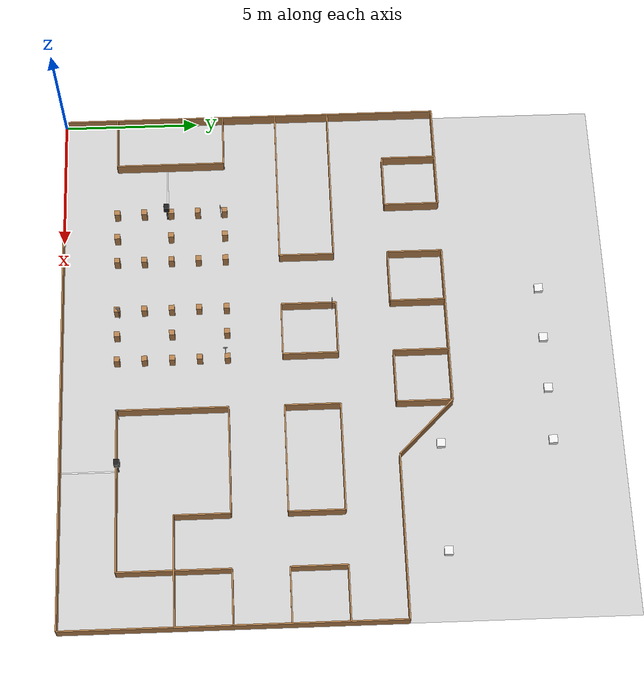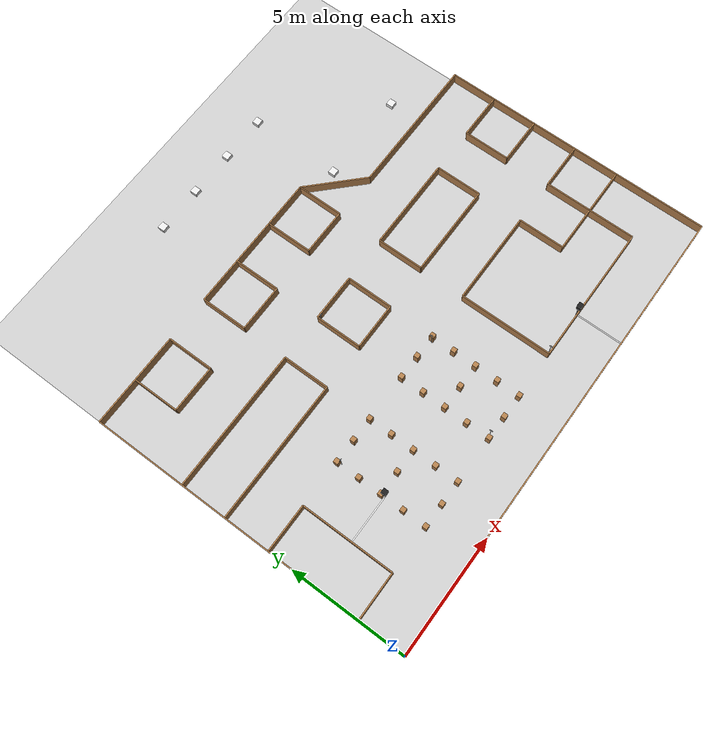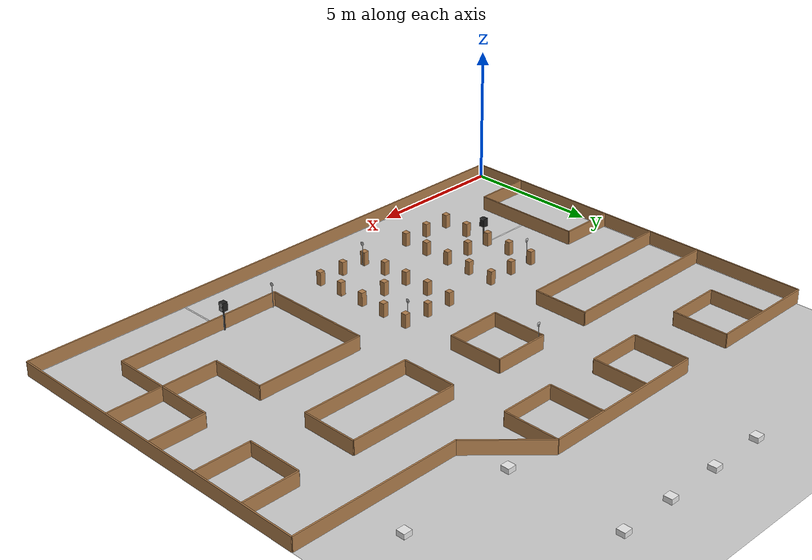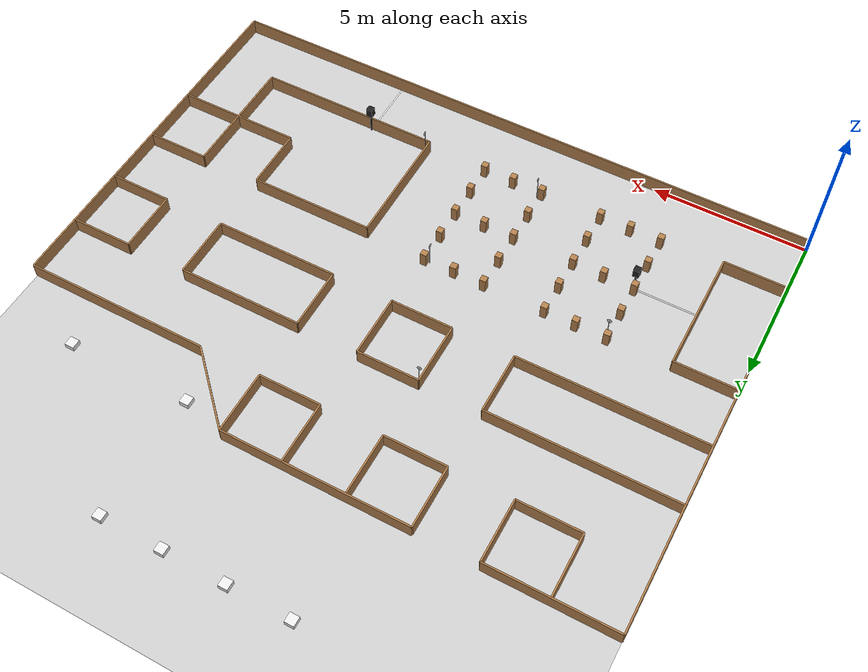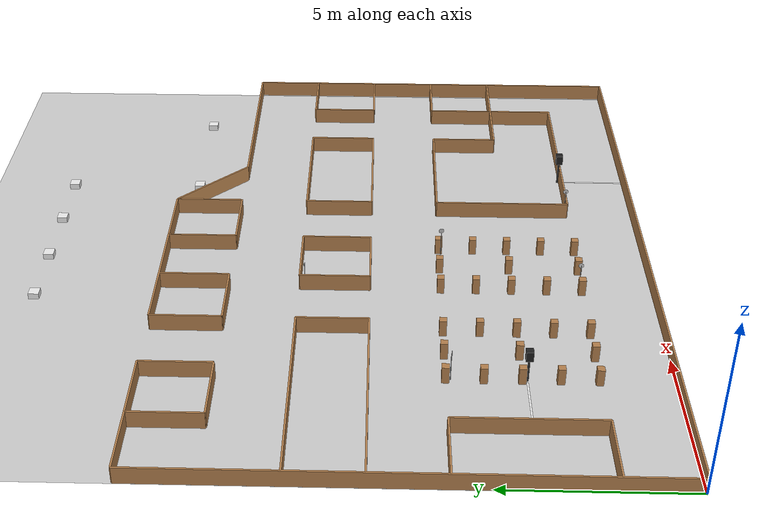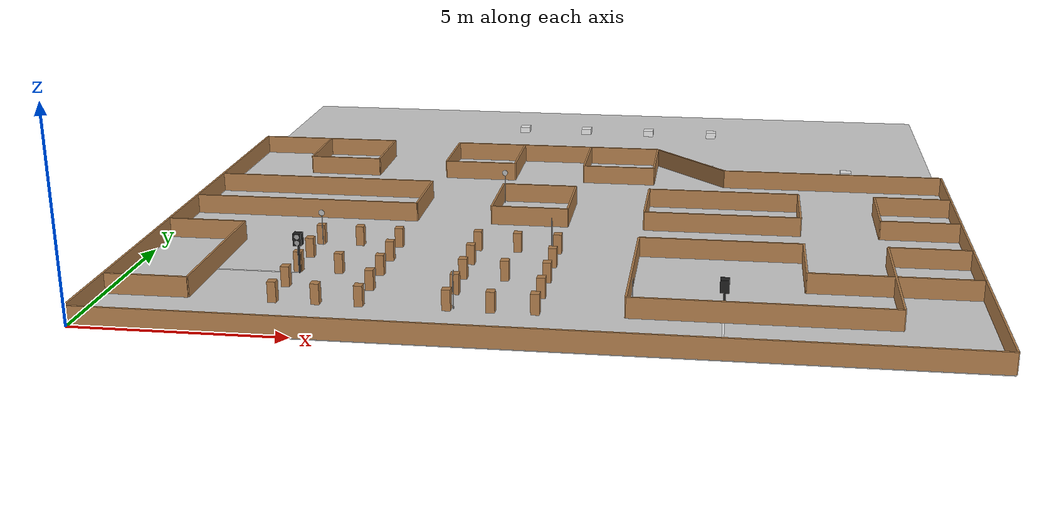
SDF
<sdf version="1.6">
 <world name="default">
  <include><uri>model://cube</uri><name>cube_5</name><pose>13.5 17.5 0 0 0 4.71238898038469</pose></include>
  <include><uri>model://cube</uri><name>cube_4</name><pose>11.5 17.5 0 0 0 4.71238898038469</pose></include>
  <include><uri>model://cube</uri><name>cube_3</name><pose>9.5 17.5 0 0 0 4.71238898038469</pose></include>
  <include><uri>model://cube</uri><name>cube_2</name><pose>7.5 17.5 0 0 0 4.71238898038469</pose></include>
  <include><uri>model://cube</uri><name>cube_1</name><pose>17.5 13.5 0 0 0 4.71238898038469</pose></include>
  <include><uri>model://cube</uri><name>cube_0</name><pose>13.5 13.5 0 0 0 4.71238898038469</pose></include>
  <model name="box_72">
   <pose>10.0 2.0 0.25 0 0 0</pose>
   <link name="link">
    <inertial>
     <mass>1</mass>
     <inertia><ixx>0</ixx><ixy>0</ixy><ixz>0</ixz><iyy>0</iyy><iyz>0</iyz><izz>0</izz></inertia>
    </inertial>
    <collision name="collision"><geometry><box><size>0.2 0.2 0.5</size></box></geometry></collision>
    <visual name="visual">
     <geometry><box><size>0.2 0.2 0.5</size></box></geometry>
     <material>
      <script><name>Gazebo/WoodFloor</name><uri>file://media/materials/scripts/gazebo.material</uri></script>
     </material>
    </visual>
   </link>
   <static>1</static>
  </model>
  <model name="box_71">
   <pose>9.0 2.0 0.25 0 0 0</pose>
   <link name="link">
    <inertial>
     <mass>1</mass>
     <inertia><ixx>0</ixx><ixy>0</ixy><ixz>0</ixz><iyy>0</iyy><iyz>0</iyz><izz>0</izz></inertia>
    </inertial>
    <collision name="collision"><geometry><box><size>0.2 0.2 0.5</size></box></geometry></collision>
    <visual name="visual">
     <geometry><box><size>0.2 0.2 0.5</size></box></geometry>
     <material>
      <script><name>Gazebo/WoodFloor</name><uri>file://media/materials/scripts/gazebo.material</uri></script>
     </material>
    </visual>
   </link>
   <static>1</static>
  </model>
  <model name="box_70">
   <pose>8.0 2.0 0.25 0 0 0</pose>
   <link name="link">
    <inertial>
     <mass>1</mass>
     <inertia><ixx>0</ixx><ixy>0</ixy><ixz>0</ixz><iyy>0</iyy><iyz>0</iyz><izz>0</izz></inertia>
    </inertial>
    <collision name="collision"><geometry><box><size>0.2 0.2 0.5</size></box></geometry></collision>
    <visual name="visual">
     <geometry><box><size>0.2 0.2 0.5</size></box></geometry>
     <material>
      <script><name>Gazebo/WoodFloor</name><uri>file://media/materials/scripts/gazebo.material</uri></script>
     </material>
    </visual>
   </link>
   <static>1</static>
  </model>
  <model name="box_69">
   <pose>10.0 3.0 0.25 0 0 0</pose>
   <link name="link">
    <inertial>
     <mass>1</mass>
     <inertia><ixx>0</ixx><ixy>0</ixy><ixz>0</ixz><iyy>0</iyy><iyz>0</iyz><izz>0</izz></inertia>
    </inertial>
    <collision name="collision"><geometry><box><size>0.2 0.2 0.5</size></box></geometry></collision>
    <visual name="visual">
     <geometry><box><size>0.2 0.2 0.5</size></box></geometry>
     <material>
      <script><name>Gazebo/WoodFloor</name><uri>file://media/materials/scripts/gazebo.material</uri></script>
     </material>
    </visual>
   </link>
   <static>1</static>
  </model>
  <model name="box_68">
   <pose>8.0 3.0 0.25 0 0 0</pose>
   <link name="link">
    <inertial>
     <mass>1</mass>
     <inertia><ixx>0</ixx><ixy>0</ixy><ixz>0</ixz><iyy>0</iyy><iyz>0</iyz><izz>0</izz></inertia>
    </inertial>
    <collision name="collision"><geometry><box><size>0.2 0.2 0.5</size></box></geometry></collision>
    <visual name="visual">
     <geometry><box><size>0.2 0.2 0.5</size></box></geometry>
     <material>
      <script><name>Gazebo/WoodFloor</name><uri>file://media/materials/scripts/gazebo.material</uri></script>
     </material>
    </visual>
   </link>
   <static>1</static>
  </model>
  <model name="box_67">
   <pose>10.0 4.0 0.25 0 0 0</pose>
   <link name="link">
    <inertial>
     <mass>1</mass>
     <inertia><ixx>0</ixx><ixy>0</ixy><ixz>0</ixz><iyy>0</iyy><iyz>0</iyz><izz>0</izz></inertia>
    </inertial>
    <collision name="collision"><geometry><box><size>0.2 0.2 0.5</size></box></geometry></collision>
    <visual name="visual">
     <geometry><box><size>0.2 0.2 0.5</size></box></geometry>
     <material>
      <script><name>Gazebo/WoodFloor</name><uri>file://media/materials/scripts/gazebo.material</uri></script>
     </material>
    </visual>
   </link>
   <static>1</static>
  </model>
  <model name="box_66">
   <pose>9.0 4.0 0.25 0 0 0</pose>
   <link name="link">
    <inertial>
     <mass>1</mass>
     <inertia><ixx>0</ixx><ixy>0</ixy><ixz>0</ixz><iyy>0</iyy><iyz>0</iyz><izz>0</izz></inertia>
    </inertial>
    <collision name="collision"><geometry><box><size>0.2 0.2 0.5</size></box></geometry></collision>
    <visual name="visual">
     <geometry><box><size>0.2 0.2 0.5</size></box></geometry>
     <material>
      <script><name>Gazebo/WoodFloor</name><uri>file://media/materials/scripts/gazebo.material</uri></script>
     </material>
    </visual>
   </link>
   <static>1</static>
  </model>
  <model name="box_65">
   <pose>8.0 4.0 0.25 0 0 0</pose>
   <link name="link">
    <inertial>
     <mass>1</mass>
     <inertia><ixx>0</ixx><ixy>0</ixy><ixz>0</ixz><iyy>0</iyy><iyz>0</iyz><izz>0</izz></inertia>
    </inertial>
    <collision name="collision"><geometry><box><size>0.2 0.2 0.5</size></box></geometry></collision>
    <visual name="visual">
     <geometry><box><size>0.2 0.2 0.5</size></box></geometry>
     <material>
      <script><name>Gazebo/WoodFloor</name><uri>file://media/materials/scripts/gazebo.material</uri></script>
     </material>
    </visual>
   </link>
   <static>1</static>
  </model>
  <model name="box_64">
   <pose>10.0 4.0 0.25 0 0 0</pose>
   <link name="link">
    <inertial>
     <mass>1</mass>
     <inertia><ixx>0</ixx><ixy>0</ixy><ixz>0</ixz><iyy>0</iyy><iyz>0</iyz><izz>0</izz></inertia>
    </inertial>
    <collision name="collision"><geometry><box><size>0.2 0.2 0.5</size></box></geometry></collision>
    <visual name="visual">
     <geometry><box><size>0.2 0.2 0.5</size></box></geometry>
     <material>
      <script><name>Gazebo/WoodFloor</name><uri>file://media/materials/scripts/gazebo.material</uri></script>
     </material>
    </visual>
   </link>
   <static>1</static>
  </model>
  <model name="box_63">
   <pose>9.0 4.0 0.25 0 0 0</pose>
   <link name="link">
    <inertial>
     <mass>1</mass>
     <inertia><ixx>0</ixx><ixy>0</ixy><ixz>0</ixz><iyy>0</iyy><iyz>0</iyz><izz>0</izz></inertia>
    </inertial>
    <collision name="collision"><geometry><box><size>0.2 0.2 0.5</size></box></geometry></collision>
    <visual name="visual">
     <geometry><box><size>0.2 0.2 0.5</size></box></geometry>
     <material>
      <script><name>Gazebo/WoodFloor</name><uri>file://media/materials/scripts/gazebo.material</uri></script>
     </material>
    </visual>
   </link>
   <static>1</static>
  </model>
  <model name="box_62">
   <pose>8.0 4.0 0.25 0 0 0</pose>
   <link name="link">
    <inertial>
     <mass>1</mass>
     <inertia><ixx>0</ixx><ixy>0</ixy><ixz>0</ixz><iyy>0</iyy><iyz>0</iyz><izz>0</izz></inertia>
    </inertial>
    <collision name="collision"><geometry><box><size>0.2 0.2 0.5</size></box></geometry></collision>
    <visual name="visual">
     <geometry><box><size>0.2 0.2 0.5</size></box></geometry>
     <material>
      <script><name>Gazebo/WoodFloor</name><uri>file://media/materials/scripts/gazebo.material</uri></script>
     </material>
    </visual>
   </link>
   <static>1</static>
  </model>
  <model name="box_61">
   <pose>10.0 5.0 0.25 0 0 0</pose>
   <link name="link">
    <inertial>
     <mass>1</mass>
     <inertia><ixx>0</ixx><ixy>0</ixy><ixz>0</ixz><iyy>0</iyy><iyz>0</iyz><izz>0</izz></inertia>
    </inertial>
    <collision name="collision"><geometry><box><size>0.2 0.2 0.5</size></box></geometry></collision>
    <visual name="visual">
     <geometry><box><size>0.2 0.2 0.5</size></box></geometry>
     <material>
      <script><name>Gazebo/WoodFloor</name><uri>file://media/materials/scripts/gazebo.material</uri></script>
     </material>
    </visual>
   </link>
   <static>1</static>
  </model>
  <model name="box_60">
   <pose>8.0 5.0 0.25 0 0 0</pose>
   <link name="link">
    <inertial>
     <mass>1</mass>
     <inertia><ixx>0</ixx><ixy>0</ixy><ixz>0</ixz><iyy>0</iyy><iyz>0</iyz><izz>0</izz></inertia>
    </inertial>
    <collision name="collision"><geometry><box><size>0.2 0.2 0.5</size></box></geometry></collision>
    <visual name="visual">
     <geometry><box><size>0.2 0.2 0.5</size></box></geometry>
     <material>
      <script><name>Gazebo/WoodFloor</name><uri>file://media/materials/scripts/gazebo.material</uri></script>
     </material>
    </visual>
   </link>
   <static>1</static>
  </model>
  <model name="box_59">
   <pose>10.0 6.0 0.25 0 0 0</pose>
   <link name="link">
    <inertial>
     <mass>1</mass>
     <inertia><ixx>0</ixx><ixy>0</ixy><ixz>0</ixz><iyy>0</iyy><iyz>0</iyz><izz>0</izz></inertia>
    </inertial>
    <collision name="collision"><geometry><box><size>0.2 0.2 0.5</size></box></geometry></collision>
    <visual name="visual">
     <geometry><box><size>0.2 0.2 0.5</size></box></geometry>
     <material>
      <script><name>Gazebo/WoodFloor</name><uri>file://media/materials/scripts/gazebo.material</uri></script>
     </material>
    </visual>
   </link>
   <static>1</static>
  </model>
  <model name="box_58">
   <pose>9.0 6.0 0.25 0 0 0</pose>
   <link name="link">
    <inertial>
     <mass>1</mass>
     <inertia><ixx>0</ixx><ixy>0</ixy><ixz>0</ixz><iyy>0</iyy><iyz>0</iyz><izz>0</izz></inertia>
    </inertial>
    <collision name="collision"><geometry><box><size>0.2 0.2 0.5</size></box></geometry></collision>
    <visual name="visual">
     <geometry><box><size>0.2 0.2 0.5</size></box></geometry>
     <material>
      <script><name>Gazebo/WoodFloor</name><uri>file://media/materials/scripts/gazebo.material</uri></script>
     </material>
    </visual>
   </link>
   <static>1</static>
  </model>
  <model name="box_57">
   <pose>8.0 6.0 0.25 0 0 0</pose>
   <link name="link">
    <inertial>
     <mass>1</mass>
     <inertia><ixx>0</ixx><ixy>0</ixy><ixz>0</ixz><iyy>0</iyy><iyz>0</iyz><izz>0</izz></inertia>
    </inertial>
    <collision name="collision"><geometry><box><size>0.2 0.2 0.5</size></box></geometry></collision>
    <visual name="visual">
     <geometry><box><size>0.2 0.2 0.5</size></box></geometry>
     <material>
      <script><name>Gazebo/WoodFloor</name><uri>file://media/materials/scripts/gazebo.material</uri></script>
     </material>
    </visual>
   </link>
   <static>1</static>
  </model>
  <model name="box_56">
   <pose>6.0 2.0 0.25 0 0 0</pose>
   <link name="link">
    <inertial>
     <mass>1</mass>
     <inertia><ixx>0</ixx><ixy>0</ixy><ixz>0</ixz><iyy>0</iyy><iyz>0</iyz><izz>0</izz></inertia>
    </inertial>
    <collision name="collision"><geometry><box><size>0.2 0.2 0.5</size></box></geometry></collision>
    <visual name="visual">
     <geometry><box><size>0.2 0.2 0.5</size></box></geometry>
     <material>
      <script><name>Gazebo/WoodFloor</name><uri>file://media/materials/scripts/gazebo.material</uri></script>
     </material>
    </visual>
   </link>
   <static>1</static>
  </model>
  <model name="box_55">
   <pose>5.0 2.0 0.25 0 0 0</pose>
   <link name="link">
    <inertial>
     <mass>1</mass>
     <inertia><ixx>0</ixx><ixy>0</ixy><ixz>0</ixz><iyy>0</iyy><iyz>0</iyz><izz>0</izz></inertia>
    </inertial>
    <collision name="collision"><geometry><box><size>0.2 0.2 0.5</size></box></geometry></collision>
    <visual name="visual">
     <geometry><box><size>0.2 0.2 0.5</size></box></geometry>
     <material>
      <script><name>Gazebo/WoodFloor</name><uri>file://media/materials/scripts/gazebo.material</uri></script>
     </material>
    </visual>
   </link>
   <static>1</static>
  </model>
  <model name="box_54">
   <pose>4.0 2.0 0.25 0 0 0</pose>
   <link name="link">
    <inertial>
     <mass>1</mass>
     <inertia><ixx>0</ixx><ixy>0</ixy><ixz>0</ixz><iyy>0</iyy><iyz>0</iyz><izz>0</izz></inertia>
    </inertial>
    <collision name="collision"><geometry><box><size>0.2 0.2 0.5</size></box></geometry></collision>
    <visual name="visual">
     <geometry><box><size>0.2 0.2 0.5</size></box></geometry>
     <material>
      <script><name>Gazebo/WoodFloor</name><uri>file://media/materials/scripts/gazebo.material</uri></script>
     </material>
    </visual>
   </link>
   <static>1</static>
  </model>
  <model name="box_53">
   <pose>6.0 3.0 0.25 0 0 0</pose>
   <link name="link">
    <inertial>
     <mass>1</mass>
     <inertia><ixx>0</ixx><ixy>0</ixy><ixz>0</ixz><iyy>0</iyy><iyz>0</iyz><izz>0</izz></inertia>
    </inertial>
    <collision name="collision"><geometry><box><size>0.2 0.2 0.5</size></box></geometry></collision>
    <visual name="visual">
     <geometry><box><size>0.2 0.2 0.5</size></box></geometry>
     <material>
      <script><name>Gazebo/WoodFloor</name><uri>file://media/materials/scripts/gazebo.material</uri></script>
     </material>
    </visual>
   </link>
   <static>1</static>
  </model>
  <model name="box_52">
   <pose>4.0 3.0 0.25 0 0 0</pose>
   <link name="link">
    <inertial>
     <mass>1</mass>
     <inertia><ixx>0</ixx><ixy>0</ixy><ixz>0</ixz><iyy>0</iyy><iyz>0</iyz><izz>0</izz></inertia>
    </inertial>
    <collision name="collision"><geometry><box><size>0.2 0.2 0.5</size></box></geometry></collision>
    <visual name="visual">
     <geometry><box><size>0.2 0.2 0.5</size></box></geometry>
     <material>
      <script><name>Gazebo/WoodFloor</name><uri>file://media/materials/scripts/gazebo.material</uri></script>
     </material>
    </visual>
   </link>
   <static>1</static>
  </model>
  <model name="box_51">
   <pose>6.0 4.0 0.25 0 0 0</pose>
   <link name="link">
    <inertial>
     <mass>1</mass>
     <inertia><ixx>0</ixx><ixy>0</ixy><ixz>0</ixz><iyy>0</iyy><iyz>0</iyz><izz>0</izz></inertia>
    </inertial>
    <collision name="collision"><geometry><box><size>0.2 0.2 0.5</size></box></geometry></collision>
    <visual name="visual">
     <geometry><box><size>0.2 0.2 0.5</size></box></geometry>
     <material>
      <script><name>Gazebo/WoodFloor</name><uri>file://media/materials/scripts/gazebo.material</uri></script>
     </material>
    </visual>
   </link>
   <static>1</static>
  </model>
  <model name="box_50">
   <pose>5.0 4.0 0.25 0 0 0</pose>
   <link name="link">
    <inertial>
     <mass>1</mass>
     <inertia><ixx>0</ixx><ixy>0</ixy><ixz>0</ixz><iyy>0</iyy><iyz>0</iyz><izz>0</izz></inertia>
    </inertial>
    <collision name="collision"><geometry><box><size>0.2 0.2 0.5</size></box></geometry></collision>
    <visual name="visual">
     <geometry><box><size>0.2 0.2 0.5</size></box></geometry>
     <material>
      <script><name>Gazebo/WoodFloor</name><uri>file://media/materials/scripts/gazebo.material</uri></script>
     </material>
    </visual>
   </link>
   <static>1</static>
  </model>
  <model name="box_49">
   <pose>4.0 4.0 0.25 0 0 0</pose>
   <link name="link">
    <inertial>
     <mass>1</mass>
     <inertia><ixx>0</ixx><ixy>0</ixy><ixz>0</ixz><iyy>0</iyy><iyz>0</iyz><izz>0</izz></inertia>
    </inertial>
    <collision name="collision"><geometry><box><size>0.2 0.2 0.5</size></box></geometry></collision>
    <visual name="visual">
     <geometry><box><size>0.2 0.2 0.5</size></box></geometry>
     <material>
      <script><name>Gazebo/WoodFloor</name><uri>file://media/materials/scripts/gazebo.material</uri></script>
     </material>
    </visual>
   </link>
   <static>1</static>
  </model>
  <model name="box_48">
   <pose>6.0 4.0 0.25 0 0 0</pose>
   <link name="link">
    <inertial>
     <mass>1</mass>
     <inertia><ixx>0</ixx><ixy>0</ixy><ixz>0</ixz><iyy>0</iyy><iyz>0</iyz><izz>0</izz></inertia>
    </inertial>
    <collision name="collision"><geometry><box><size>0.2 0.2 0.5</size></box></geometry></collision>
    <visual name="visual">
     <geometry><box><size>0.2 0.2 0.5</size></box></geometry>
     <material>
      <script><name>Gazebo/WoodFloor</name><uri>file://media/materials/scripts/gazebo.material</uri></script>
     </material>
    </visual>
   </link>
   <static>1</static>
  </model>
  <model name="box_47">
   <pose>5.0 4.0 0.25 0 0 0</pose>
   <link name="link">
    <inertial>
     <mass>1</mass>
     <inertia><ixx>0</ixx><ixy>0</ixy><ixz>0</ixz><iyy>0</iyy><iyz>0</iyz><izz>0</izz></inertia>
    </inertial>
    <collision name="collision"><geometry><box><size>0.2 0.2 0.5</size></box></geometry></collision>
    <visual name="visual">
     <geometry><box><size>0.2 0.2 0.5</size></box></geometry>
     <material>
      <script><name>Gazebo/WoodFloor</name><uri>file://media/materials/scripts/gazebo.material</uri></script>
     </material>
    </visual>
   </link>
   <static>1</static>
  </model>
  <model name="box_46">
   <pose>4.0 4.0 0.25 0 0 0</pose>
   <link name="link">
    <inertial>
     <mass>1</mass>
     <inertia><ixx>0</ixx><ixy>0</ixy><ixz>0</ixz><iyy>0</iyy><iyz>0</iyz><izz>0</izz></inertia>
    </inertial>
    <collision name="collision"><geometry><box><size>0.2 0.2 0.5</size></box></geometry></collision>
    <visual name="visual">
     <geometry><box><size>0.2 0.2 0.5</size></box></geometry>
     <material>
      <script><name>Gazebo/WoodFloor</name><uri>file://media/materials/scripts/gazebo.material</uri></script>
     </material>
    </visual>
   </link>
   <static>1</static>
  </model>
  <model name="box_45">
   <pose>6.0 5.0 0.25 0 0 0</pose>
   <link name="link">
    <inertial>
     <mass>1</mass>
     <inertia><ixx>0</ixx><ixy>0</ixy><ixz>0</ixz><iyy>0</iyy><iyz>0</iyz><izz>0</izz></inertia>
    </inertial>
    <collision name="collision"><geometry><box><size>0.2 0.2 0.5</size></box></geometry></collision>
    <visual name="visual">
     <geometry><box><size>0.2 0.2 0.5</size></box></geometry>
     <material>
      <script><name>Gazebo/WoodFloor</name><uri>file://media/materials/scripts/gazebo.material</uri></script>
     </material>
    </visual>
   </link>
   <static>1</static>
  </model>
  <model name="box_44">
   <pose>4.0 5.0 0.25 0 0 0</pose>
   <link name="link">
    <inertial>
     <mass>1</mass>
     <inertia><ixx>0</ixx><ixy>0</ixy><ixz>0</ixz><iyy>0</iyy><iyz>0</iyz><izz>0</izz></inertia>
    </inertial>
    <collision name="collision"><geometry><box><size>0.2 0.2 0.5</size></box></geometry></collision>
    <visual name="visual">
     <geometry><box><size>0.2 0.2 0.5</size></box></geometry>
     <material>
      <script><name>Gazebo/WoodFloor</name><uri>file://media/materials/scripts/gazebo.material</uri></script>
     </material>
    </visual>
   </link>
   <static>1</static>
  </model>
  <model name="box_43">
   <pose>6.0 6.0 0.25 0 0 0</pose>
   <link name="link">
    <inertial>
     <mass>1</mass>
     <inertia><ixx>0</ixx><ixy>0</ixy><ixz>0</ixz><iyy>0</iyy><iyz>0</iyz><izz>0</izz></inertia>
    </inertial>
    <collision name="collision"><geometry><box><size>0.2 0.2 0.5</size></box></geometry></collision>
    <visual name="visual">
     <geometry><box><size>0.2 0.2 0.5</size></box></geometry>
     <material>
      <script><name>Gazebo/WoodFloor</name><uri>file://media/materials/scripts/gazebo.material</uri></script>
     </material>
    </visual>
   </link>
   <static>1</static>
  </model>
  <model name="box_42">
   <pose>5.0 6.0 0.25 0 0 0</pose>
   <link name="link">
    <inertial>
     <mass>1</mass>
     <inertia><ixx>0</ixx><ixy>0</ixy><ixz>0</ixz><iyy>0</iyy><iyz>0</iyz><izz>0</izz></inertia>
    </inertial>
    <collision name="collision"><geometry><box><size>0.2 0.2 0.5</size></box></geometry></collision>
    <visual name="visual">
     <geometry><box><size>0.2 0.2 0.5</size></box></geometry>
     <material>
      <script><name>Gazebo/WoodFloor</name><uri>file://media/materials/scripts/gazebo.material</uri></script>
     </material>
    </visual>
   </link>
   <static>1</static>
  </model>
  <model name="box_41">
   <pose>4.0 6.0 0.25 0 0 0</pose>
   <link name="link">
    <inertial>
     <mass>1</mass>
     <inertia><ixx>0</ixx><ixy>0</ixy><ixz>0</ixz><iyy>0</iyy><iyz>0</iyz><izz>0</izz></inertia>
    </inertial>
    <collision name="collision"><geometry><box><size>0.2 0.2 0.5</size></box></geometry></collision>
    <visual name="visual">
     <geometry><box><size>0.2 0.2 0.5</size></box></geometry>
     <material>
      <script><name>Gazebo/WoodFloor</name><uri>file://media/materials/scripts/gazebo.material</uri></script>
     </material>
    </visual>
   </link>
   <static>1</static>
  </model>
  <include>
   <uri>model://left-sign</uri>
   <name>sign_4</name>
   <pose>8.06 9.86 0 0 0 6.283185307179586</pose>
  </include>
  <include>
   <uri>model://brick-sign</uri>
   <name>sign_3</name>
   <pose>9.86 5.9399999999999995 0 0 0 4.71238898038469</pose>
  </include>
  <include>
   <uri>model://right-sign</uri>
   <name>sign_2</name>
   <pose>4.06 5.859999999999999 0 0 0 6.283185307179586</pose>
  </include>
  <include>
   <uri>model://forward-sign</uri>
   <name>sign_1</name>
   <pose>12.14 2.0600000000000005 0 0 0 1.5707963267948966</pose>
  </include>
  <include>
   <uri>model://forward-sign</uri>
   <name>sign_0</name>
   <pose>8.14 2.0600000000000005 0 0 0 1.5707963267948966</pose>
  </include>
  <model name="box_40">
   <pose>12.0 13.0 0.25 0 0 -1.5707963267948966</pose>
   <link name="link">
    <inertial>
     <mass>1</mass>
     <inertia><ixx>0</ixx><ixy>0</ixy><ixz>0</ixz><iyy>0</iyy><iyz>0</iyz><izz>0</izz></inertia>
    </inertial>
    <collision name="collision"><geometry><box><size>2.0 0.05 0.5</size></box></geometry></collision>
    <visual name="visual">
     <geometry><box><size>2.0 0.05 0.5</size></box></geometry>
     <material>
      <script><name>Gazebo/WoodFloor</name><uri>file://media/materials/scripts/gazebo.material</uri></script>
     </material>
    </visual>
   </link>
   <static>1</static>
  </model>
  <model name="box_39">
   <pose>11.0 12.0 0.25 0 0 -3.141592653589793</pose>
   <link name="link">
    <inertial>
     <mass>1</mass>
     <inertia><ixx>0</ixx><ixy>0</ixy><ixz>0</ixz><iyy>0</iyy><iyz>0</iyz><izz>0</izz></inertia>
    </inertial>
    <collision name="collision"><geometry><box><size>2.0 0.05 0.5</size></box></geometry></collision>
    <visual name="visual">
     <geometry><box><size>2.0 0.05 0.5</size></box></geometry>
     <material>
      <script><name>Gazebo/WoodFloor</name><uri>file://media/materials/scripts/gazebo.material</uri></script>
     </material>
    </visual>
   </link>
   <static>1</static>
  </model>
  <model name="box_38">
   <pose>10.0 13.0 0.25 0 0 1.5707963267948966</pose>
   <link name="link">
    <inertial>
     <mass>1</mass>
     <inertia><ixx>0</ixx><ixy>0</ixy><ixz>0</ixz><iyy>0</iyy><iyz>0</iyz><izz>0</izz></inertia>
    </inertial>
    <collision name="collision"><geometry><box><size>2.0 0.05 0.5</size></box></geometry></collision>
    <visual name="visual">
     <geometry><box><size>2.0 0.05 0.5</size></box></geometry>
     <material>
      <script><name>Gazebo/WoodFloor</name><uri>file://media/materials/scripts/gazebo.material</uri></script>
     </material>
    </visual>
   </link>
   <static>1</static>
  </model>
  <model name="box_37">
   <pose>8.0 13.0 0.25 0 0 -1.5707963267948966</pose>
   <link name="link">
    <inertial>
     <mass>1</mass>
     <inertia><ixx>0</ixx><ixy>0</ixy><ixz>0</ixz><iyy>0</iyy><iyz>0</iyz><izz>0</izz></inertia>
    </inertial>
    <collision name="collision"><geometry><box><size>2.0 0.05 0.5</size></box></geometry></collision>
    <visual name="visual">
     <geometry><box><size>2.0 0.05 0.5</size></box></geometry>
     <material>
      <script><name>Gazebo/WoodFloor</name><uri>file://media/materials/scripts/gazebo.material</uri></script>
     </material>
    </visual>
   </link>
   <static>1</static>
  </model>
  <model name="box_36">
   <pose>7.0 12.0 0.25 0 0 -3.141592653589793</pose>
   <link name="link">
    <inertial>
     <mass>1</mass>
     <inertia><ixx>0</ixx><ixy>0</ixy><ixz>0</ixz><iyy>0</iyy><iyz>0</iyz><izz>0</izz></inertia>
    </inertial>
    <collision name="collision"><geometry><box><size>2.0 0.05 0.5</size></box></geometry></collision>
    <visual name="visual">
     <geometry><box><size>2.0 0.05 0.5</size></box></geometry>
     <material>
      <script><name>Gazebo/WoodFloor</name><uri>file://media/materials/scripts/gazebo.material</uri></script>
     </material>
    </visual>
   </link>
   <static>1</static>
  </model>
  <model name="box_35">
   <pose>6.0 13.0 0.25 0 0 1.5707963267948966</pose>
   <link name="link">
    <inertial>
     <mass>1</mass>
     <inertia><ixx>0</ixx><ixy>0</ixy><ixz>0</ixz><iyy>0</iyy><iyz>0</iyz><izz>0</izz></inertia>
    </inertial>
    <collision name="collision"><geometry><box><size>2.0 0.05 0.5</size></box></geometry></collision>
    <visual name="visual">
     <geometry><box><size>2.0 0.05 0.5</size></box></geometry>
     <material>
      <script><name>Gazebo/WoodFloor</name><uri>file://media/materials/scripts/gazebo.material</uri></script>
     </material>
    </visual>
   </link>
   <static>1</static>
  </model>
  <model name="box_34">
   <pose>2.0 13.0 0.25 0 0 -1.5707963267948966</pose>
   <link name="link">
    <inertial>
     <mass>1</mass>
     <inertia><ixx>0</ixx><ixy>0</ixy><ixz>0</ixz><iyy>0</iyy><iyz>0</iyz><izz>0</izz></inertia>
    </inertial>
    <collision name="collision"><geometry><box><size>2.0 0.05 0.5</size></box></geometry></collision>
    <visual name="visual">
     <geometry><box><size>2.0 0.05 0.5</size></box></geometry>
     <material>
      <script><name>Gazebo/WoodFloor</name><uri>file://media/materials/scripts/gazebo.material</uri></script>
     </material>
    </visual>
   </link>
   <static>1</static>
  </model>
  <model name="box_33">
   <pose>3.0 12.0 0.25 0 0 -0.0</pose>
   <link name="link">
    <inertial>
     <mass>1</mass>
     <inertia><ixx>0</ixx><ixy>0</ixy><ixz>0</ixz><iyy>0</iyy><iyz>0</iyz><izz>0</izz></inertia>
    </inertial>
    <collision name="collision"><geometry><box><size>2.0 0.05 0.5</size></box></geometry></collision>
    <visual name="visual">
     <geometry><box><size>2.0 0.05 0.5</size></box></geometry>
     <material>
      <script><name>Gazebo/WoodFloor</name><uri>file://media/materials/scripts/gazebo.material</uri></script>
     </material>
    </visual>
   </link>
   <static>1</static>
  </model>
  <model name="box_32">
   <pose>4.0 13.0 0.25 0 0 1.5707963267948966</pose>
   <link name="link">
    <inertial>
     <mass>1</mass>
     <inertia><ixx>0</ixx><ixy>0</ixy><ixz>0</ixz><iyy>0</iyy><iyz>0</iyz><izz>0</izz></inertia>
    </inertial>
    <collision name="collision"><geometry><box><size>2.0 0.05 0.5</size></box></geometry></collision>
    <visual name="visual">
     <geometry><box><size>2.0 0.05 0.5</size></box></geometry>
     <material>
      <script><name>Gazebo/WoodFloor</name><uri>file://media/materials/scripts/gazebo.material</uri></script>
     </material>
    </visual>
   </link>
   <static>1</static>
  </model>
  <model name="box_31">
   <pose>1.0 2.0 0.25 0 0 -0.0</pose>
   <link name="link">
    <inertial>
     <mass>1</mass>
     <inertia><ixx>0</ixx><ixy>0</ixy><ixz>0</ixz><iyy>0</iyy><iyz>0</iyz><izz>0</izz></inertia>
    </inertial>
    <collision name="collision"><geometry><box><size>2.0 0.05 0.5</size></box></geometry></collision>
    <visual name="visual">
     <geometry><box><size>2.0 0.05 0.5</size></box></geometry>
     <material>
      <script><name>Gazebo/WoodFloor</name><uri>file://media/materials/scripts/gazebo.material</uri></script>
     </material>
    </visual>
   </link>
   <static>1</static>
  </model>
  <model name="box_30">
   <pose>2.0 4.0 0.25 0 0 1.5707963267948966</pose>
   <link name="link">
    <inertial>
     <mass>1</mass>
     <inertia><ixx>0</ixx><ixy>0</ixy><ixz>0</ixz><iyy>0</iyy><iyz>0</iyz><izz>0</izz></inertia>
    </inertial>
    <collision name="collision"><geometry><box><size>4.0 0.05 0.5</size></box></geometry></collision>
    <visual name="visual">
     <geometry><box><size>4.0 0.05 0.5</size></box></geometry>
     <material>
      <script><name>Gazebo/WoodFloor</name><uri>file://media/materials/scripts/gazebo.material</uri></script>
     </material>
    </visual>
   </link>
   <static>1</static>
  </model>
  <model name="box_29">
   <pose>1.0 6.0 0.25 0 0 -3.141592653589793</pose>
   <link name="link">
    <inertial>
     <mass>1</mass>
     <inertia><ixx>0</ixx><ixy>0</ixy><ixz>0</ixz><iyy>0</iyy><iyz>0</iyz><izz>0</izz></inertia>
    </inertial>
    <collision name="collision"><geometry><box><size>2.0 0.05 0.5</size></box></geometry></collision>
    <visual name="visual">
     <geometry><box><size>2.0 0.05 0.5</size></box></geometry>
     <material>
      <script><name>Gazebo/WoodFloor</name><uri>file://media/materials/scripts/gazebo.material</uri></script>
     </material>
    </visual>
   </link>
   <static>1</static>
  </model>
  <model name="box_28">
   <pose>3.0 10.0 0.25 0 0 -0.0</pose>
   <link name="link">
    <inertial>
     <mass>1</mass>
     <inertia><ixx>0</ixx><ixy>0</ixy><ixz>0</ixz><iyy>0</iyy><iyz>0</iyz><izz>0</izz></inertia>
    </inertial>
    <collision name="collision"><geometry><box><size>6.0 0.05 0.5</size></box></geometry></collision>
    <visual name="visual">
     <geometry><box><size>6.0 0.05 0.5</size></box></geometry>
     <material>
      <script><name>Gazebo/WoodFloor</name><uri>file://media/materials/scripts/gazebo.material</uri></script>
     </material>
    </visual>
   </link>
   <static>1</static>
  </model>
  <model name="box_27">
   <pose>6.0 9.0 0.25 0 0 -1.5707963267948966</pose>
   <link name="link">
    <inertial>
     <mass>1</mass>
     <inertia><ixx>0</ixx><ixy>0</ixy><ixz>0</ixz><iyy>0</iyy><iyz>0</iyz><izz>0</izz></inertia>
    </inertial>
    <collision name="collision"><geometry><box><size>2.0 0.05 0.5</size></box></geometry></collision>
    <visual name="visual">
     <geometry><box><size>2.0 0.05 0.5</size></box></geometry>
     <material>
      <script><name>Gazebo/WoodFloor</name><uri>file://media/materials/scripts/gazebo.material</uri></script>
     </material>
    </visual>
   </link>
   <static>1</static>
  </model>
  <model name="box_26">
   <pose>3.0 8.0 0.25 0 0 -3.141592653589793</pose>
   <link name="link">
    <inertial>
     <mass>1</mass>
     <inertia><ixx>0</ixx><ixy>0</ixy><ixz>0</ixz><iyy>0</iyy><iyz>0</iyz><izz>0</izz></inertia>
    </inertial>
    <collision name="collision"><geometry><box><size>6.0 0.05 0.5</size></box></geometry></collision>
    <visual name="visual">
     <geometry><box><size>6.0 0.05 0.5</size></box></geometry>
     <material>
      <script><name>Gazebo/WoodFloor</name><uri>file://media/materials/scripts/gazebo.material</uri></script>
     </material>
    </visual>
   </link>
   <static>1</static>
  </model>
  <model name="box_25">
   <pose>9.0 10.0 0.25 0 0 -3.141592653589793</pose>
   <link name="link">
    <inertial>
     <mass>1</mass>
     <inertia><ixx>0</ixx><ixy>0</ixy><ixz>0</ixz><iyy>0</iyy><iyz>0</iyz><izz>0</izz></inertia>
    </inertial>
    <collision name="collision"><geometry><box><size>2.0 0.05 0.5</size></box></geometry></collision>
    <visual name="visual">
     <geometry><box><size>2.0 0.05 0.5</size></box></geometry>
     <material>
      <script><name>Gazebo/WoodFloor</name><uri>file://media/materials/scripts/gazebo.material</uri></script>
     </material>
    </visual>
   </link>
   <static>1</static>
  </model>
  <model name="box_24">
   <pose>8.0 9.0 0.25 0 0 -1.5707963267948966</pose>
   <link name="link">
    <inertial>
     <mass>1</mass>
     <inertia><ixx>0</ixx><ixy>0</ixy><ixz>0</ixz><iyy>0</iyy><iyz>0</iyz><izz>0</izz></inertia>
    </inertial>
    <collision name="collision"><geometry><box><size>2.0 0.05 0.5</size></box></geometry></collision>
    <visual name="visual">
     <geometry><box><size>2.0 0.05 0.5</size></box></geometry>
     <material>
      <script><name>Gazebo/WoodFloor</name><uri>file://media/materials/scripts/gazebo.material</uri></script>
     </material>
    </visual>
   </link>
   <static>1</static>
  </model>
  <model name="box_23">
   <pose>9.0 8.0 0.25 0 0 -0.0</pose>
   <link name="link">
    <inertial>
     <mass>1</mass>
     <inertia><ixx>0</ixx><ixy>0</ixy><ixz>0</ixz><iyy>0</iyy><iyz>0</iyz><izz>0</izz></inertia>
    </inertial>
    <collision name="collision"><geometry><box><size>2.0 0.05 0.5</size></box></geometry></collision>
    <visual name="visual">
     <geometry><box><size>2.0 0.05 0.5</size></box></geometry>
     <material>
      <script><name>Gazebo/WoodFloor</name><uri>file://media/materials/scripts/gazebo.material</uri></script>
     </material>
    </visual>
   </link>
   <static>1</static>
  </model>
  <model name="box_22">
   <pose>10.0 9.0 0.25 0 0 1.5707963267948966</pose>
   <link name="link">
    <inertial>
     <mass>1</mass>
     <inertia><ixx>0</ixx><ixy>0</ixy><ixz>0</ixz><iyy>0</iyy><iyz>0</iyz><izz>0</izz></inertia>
    </inertial>
    <collision name="collision"><geometry><box><size>2.0 0.05 0.5</size></box></geometry></collision>
    <visual name="visual">
     <geometry><box><size>2.0 0.05 0.5</size></box></geometry>
     <material>
      <script><name>Gazebo/WoodFloor</name><uri>file://media/materials/scripts/gazebo.material</uri></script>
     </material>
    </visual>
   </link>
   <static>1</static>
  </model>
  <model name="box_21">
   <pose>19.0 8.0 0.25 0 0 -3.141592653589793</pose>
   <link name="link">
    <inertial>
     <mass>1</mass>
     <inertia><ixx>0</ixx><ixy>0</ixy><ixz>0</ixz><iyy>0</iyy><iyz>0</iyz><izz>0</izz></inertia>
    </inertial>
    <collision name="collision"><geometry><box><size>2.0 0.05 0.5</size></box></geometry></collision>
    <visual name="visual">
     <geometry><box><size>2.0 0.05 0.5</size></box></geometry>
     <material>
      <script><name>Gazebo/WoodFloor</name><uri>file://media/materials/scripts/gazebo.material</uri></script>
     </material>
    </visual>
   </link>
   <static>1</static>
  </model>
  <model name="box_20">
   <pose>18.0 9.0 0.25 0 0 1.5707963267948966</pose>
   <link name="link">
    <inertial>
     <mass>1</mass>
     <inertia><ixx>0</ixx><ixy>0</ixy><ixz>0</ixz><iyy>0</iyy><iyz>0</iyz><izz>0</izz></inertia>
    </inertial>
    <collision name="collision"><geometry><box><size>2.0 0.05 0.5</size></box></geometry></collision>
    <visual name="visual">
     <geometry><box><size>2.0 0.05 0.5</size></box></geometry>
     <material>
      <script><name>Gazebo/WoodFloor</name><uri>file://media/materials/scripts/gazebo.material</uri></script>
     </material>
    </visual>
   </link>
   <static>1</static>
  </model>
  <model name="box_19">
   <pose>19.0 10.0 0.25 0 0 -0.0</pose>
   <link name="link">
    <inertial>
     <mass>1</mass>
     <inertia><ixx>0</ixx><ixy>0</ixy><ixz>0</ixz><iyy>0</iyy><iyz>0</iyz><izz>0</izz></inertia>
    </inertial>
    <collision name="collision"><geometry><box><size>2.0 0.05 0.5</size></box></geometry></collision>
    <visual name="visual">
     <geometry><box><size>2.0 0.05 0.5</size></box></geometry>
     <material>
      <script><name>Gazebo/WoodFloor</name><uri>file://media/materials/scripts/gazebo.material</uri></script>
     </material>
    </visual>
   </link>
   <static>1</static>
  </model>
  <model name="box_18">
   <pose>14.0 10.0 0.25 0 0 -0.0</pose>
   <link name="link">
    <inertial>
     <mass>1</mass>
     <inertia><ixx>0</ixx><ixy>0</ixy><ixz>0</ixz><iyy>0</iyy><iyz>0</iyz><izz>0</izz></inertia>
    </inertial>
    <collision name="collision"><geometry><box><size>4.0 0.05 0.5</size></box></geometry></collision>
    <visual name="visual">
     <geometry><box><size>4.0 0.05 0.5</size></box></geometry>
     <material>
      <script><name>Gazebo/WoodFloor</name><uri>file://media/materials/scripts/gazebo.material</uri></script>
     </material>
    </visual>
   </link>
   <static>1</static>
  </model>
  <model name="box_17">
   <pose>16.0 9.0 0.25 0 0 -1.5707963267948966</pose>
   <link name="link">
    <inertial>
     <mass>1</mass>
     <inertia><ixx>0</ixx><ixy>0</ixy><ixz>0</ixz><iyy>0</iyy><iyz>0</iyz><izz>0</izz></inertia>
    </inertial>
    <collision name="collision"><geometry><box><size>2.0 0.05 0.5</size></box></geometry></collision>
    <visual name="visual">
     <geometry><box><size>2.0 0.05 0.5</size></box></geometry>
     <material>
      <script><name>Gazebo/WoodFloor</name><uri>file://media/materials/scripts/gazebo.material</uri></script>
     </material>
    </visual>
   </link>
   <static>1</static>
  </model>
  <model name="box_16">
   <pose>14.0 8.0 0.25 0 0 -3.141592653589793</pose>
   <link name="link">
    <inertial>
     <mass>1</mass>
     <inertia><ixx>0</ixx><ixy>0</ixy><ixz>0</ixz><iyy>0</iyy><iyz>0</iyz><izz>0</izz></inertia>
    </inertial>
    <collision name="collision"><geometry><box><size>4.0 0.05 0.5</size></box></geometry></collision>
    <visual name="visual">
     <geometry><box><size>4.0 0.05 0.5</size></box></geometry>
     <material>
      <script><name>Gazebo/WoodFloor</name><uri>file://media/materials/scripts/gazebo.material</uri></script>
     </material>
    </visual>
   </link>
   <static>1</static>
  </model>
  <model name="box_15">
   <pose>12.0 9.0 0.25 0 0 1.5707963267948966</pose>
   <link name="link">
    <inertial>
     <mass>1</mass>
     <inertia><ixx>0</ixx><ixy>0</ixy><ixz>0</ixz><iyy>0</iyy><iyz>0</iyz><izz>0</izz></inertia>
    </inertial>
    <collision name="collision"><geometry><box><size>2.0 0.05 0.5</size></box></geometry></collision>
    <visual name="visual">
     <geometry><box><size>2.0 0.05 0.5</size></box></geometry>
     <material>
      <script><name>Gazebo/WoodFloor</name><uri>file://media/materials/scripts/gazebo.material</uri></script>
     </material>
    </visual>
   </link>
   <static>1</static>
  </model>
  <model name="box_14">
   <pose>19.0 6.0 0.25 0 0 -3.141592653589793</pose>
   <link name="link">
    <inertial>
     <mass>1</mass>
     <inertia><ixx>0</ixx><ixy>0</ixy><ixz>0</ixz><iyy>0</iyy><iyz>0</iyz><izz>0</izz></inertia>
    </inertial>
    <collision name="collision"><geometry><box><size>2.0 0.05 0.5</size></box></geometry></collision>
    <visual name="visual">
     <geometry><box><size>2.0 0.05 0.5</size></box></geometry>
     <material>
      <script><name>Gazebo/WoodFloor</name><uri>file://media/materials/scripts/gazebo.material</uri></script>
     </material>
    </visual>
   </link>
   <static>1</static>
  </model>
  <model name="box_13">
   <pose>18.0 4.0 0.25 0 0 -1.5707963267948966</pose>
   <link name="link">
    <inertial>
     <mass>1</mass>
     <inertia><ixx>0</ixx><ixy>0</ixy><ixz>0</ixz><iyy>0</iyy><iyz>0</iyz><izz>0</izz></inertia>
    </inertial>
    <collision name="collision"><geometry><box><size>4.0 0.05 0.5</size></box></geometry></collision>
    <visual name="visual">
     <geometry><box><size>4.0 0.05 0.5</size></box></geometry>
     <material>
      <script><name>Gazebo/WoodFloor</name><uri>file://media/materials/scripts/gazebo.material</uri></script>
     </material>
    </visual>
   </link>
   <static>1</static>
  </model>
  <model name="box_12">
   <pose>15.0 2.0 0.25 0 0 -3.141592653589793</pose>
   <link name="link">
    <inertial>
     <mass>1</mass>
     <inertia><ixx>0</ixx><ixy>0</ixy><ixz>0</ixz><iyy>0</iyy><iyz>0</iyz><izz>0</izz></inertia>
    </inertial>
    <collision name="collision"><geometry><box><size>6.0 0.05 0.5</size></box></geometry></collision>
    <visual name="visual">
     <geometry><box><size>6.0 0.05 0.5</size></box></geometry>
     <material>
      <script><name>Gazebo/WoodFloor</name><uri>file://media/materials/scripts/gazebo.material</uri></script>
     </material>
    </visual>
   </link>
   <static>1</static>
  </model>
  <model name="box_11">
   <pose>12.0 4.0 0.25 0 0 1.5707963267948966</pose>
   <link name="link">
    <inertial>
     <mass>1</mass>
     <inertia><ixx>0</ixx><ixy>0</ixy><ixz>0</ixz><iyy>0</iyy><iyz>0</iyz><izz>0</izz></inertia>
    </inertial>
    <collision name="collision"><geometry><box><size>4.0 0.05 0.5</size></box></geometry></collision>
    <visual name="visual">
     <geometry><box><size>4.0 0.05 0.5</size></box></geometry>
     <material>
      <script><name>Gazebo/WoodFloor</name><uri>file://media/materials/scripts/gazebo.material</uri></script>
     </material>
    </visual>
   </link>
   <static>1</static>
  </model>
  <model name="box_10">
   <pose>14.0 6.0 0.25 0 0 -0.0</pose>
   <link name="link">
    <inertial>
     <mass>1</mass>
     <inertia><ixx>0</ixx><ixy>0</ixy><ixz>0</ixz><iyy>0</iyy><iyz>0</iyz><izz>0</izz></inertia>
    </inertial>
    <collision name="collision"><geometry><box><size>4.0 0.05 0.5</size></box></geometry></collision>
    <visual name="visual">
     <geometry><box><size>4.0 0.05 0.5</size></box></geometry>
     <material>
      <script><name>Gazebo/WoodFloor</name><uri>file://media/materials/scripts/gazebo.material</uri></script>
     </material>
    </visual>
   </link>
   <static>1</static>
  </model>
  <model name="box_9">
   <pose>16.0 5.0 0.25 0 0 -1.5707963267948966</pose>
   <link name="link">
    <inertial>
     <mass>1</mass>
     <inertia><ixx>0</ixx><ixy>0</ixy><ixz>0</ixz><iyy>0</iyy><iyz>0</iyz><izz>0</izz></inertia>
    </inertial>
    <collision name="collision"><geometry><box><size>2.0 0.05 0.5</size></box></geometry></collision>
    <visual name="visual">
     <geometry><box><size>2.0 0.05 0.5</size></box></geometry>
     <material>
      <script><name>Gazebo/WoodFloor</name><uri>file://media/materials/scripts/gazebo.material</uri></script>
     </material>
    </visual>
   </link>
   <static>1</static>
  </model>
  <model name="box_8">
   <pose>18.0 4.0 0.25 0 0 -0.0</pose>
   <link name="link">
    <inertial>
     <mass>1</mass>
     <inertia><ixx>0</ixx><ixy>0</ixy><ixz>0</ixz><iyy>0</iyy><iyz>0</iyz><izz>0</izz></inertia>
    </inertial>
    <collision name="collision"><geometry><box><size>4.0 0.05 0.5</size></box></geometry></collision>
    <visual name="visual">
     <geometry><box><size>4.0 0.05 0.5</size></box></geometry>
     <material>
      <script><name>Gazebo/WoodFloor</name><uri>file://media/materials/scripts/gazebo.material</uri></script>
     </material>
    </visual>
   </link>
   <static>1</static>
  </model>
  <model name="box_7">
   <pose>9.0 14.0 0.25 0 0 -0.0</pose>
   <link name="link">
    <inertial>
     <mass>1</mass>
     <inertia><ixx>0</ixx><ixy>0</ixy><ixz>0</ixz><iyy>0</iyy><iyz>0</iyz><izz>0</izz></inertia>
    </inertial>
    <collision name="collision"><geometry><box><size>6.0 0.05 0.5</size></box></geometry></collision>
    <visual name="visual">
     <geometry><box><size>6.0 0.05 0.5</size></box></geometry>
     <material>
      <script><name>Gazebo/WoodFloor</name><uri>file://media/materials/scripts/gazebo.material</uri></script>
     </material>
    </visual>
   </link>
   <static>1</static>
  </model>
  <model name="box_6">
   <pose>13.0 13.0 0.25 0 0 -0.7853981633974483</pose>
   <link name="link">
    <inertial>
     <mass>1</mass>
     <inertia><ixx>0</ixx><ixy>0</ixy><ixz>0</ixz><iyy>0</iyy><iyz>0</iyz><izz>0</izz></inertia>
    </inertial>
    <collision name="collision">
     <geometry><box><size>2.8284271247461903 0.05 0.5</size></box></geometry>
    </collision>
    <visual name="visual">
     <geometry><box><size>2.8284271247461903 0.05 0.5</size></box></geometry>
     <material>
      <script><name>Gazebo/WoodFloor</name><uri>file://media/materials/scripts/gazebo.material</uri></script>
     </material>
    </visual>
   </link>
   <static>1</static>
  </model>
  <model name="box_5">
   <pose>17.0 12.0 0.25 0 0 -0.0</pose>
   <link name="link">
    <inertial>
     <mass>1</mass>
     <inertia><ixx>0</ixx><ixy>0</ixy><ixz>0</ixz><iyy>0</iyy><iyz>0</iyz><izz>0</izz></inertia>
    </inertial>
    <collision name="collision"><geometry><box><size>6.0 0.05 0.5</size></box></geometry></collision>
    <visual name="visual">
     <geometry><box><size>6.0 0.05 0.5</size></box></geometry>
     <material>
      <script><name>Gazebo/WoodFloor</name><uri>file://media/materials/scripts/gazebo.material</uri></script>
     </material>
    </visual>
   </link>
   <static>1</static>
  </model>
  <model name="box_4">
   <pose>20.0 6.0 0.25 0 0 -1.5707963267948966</pose>
   <link name="link">
    <inertial>
     <mass>1</mass>
     <inertia><ixx>0</ixx><ixy>0</ixy><ixz>0</ixz><iyy>0</iyy><iyz>0</iyz><izz>0</izz></inertia>
    </inertial>
    <collision name="collision"><geometry><box><size>12.0 0.05 0.5</size></box></geometry></collision>
    <visual name="visual">
     <geometry><box><size>12.0 0.05 0.5</size></box></geometry>
     <material>
      <script><name>Gazebo/WoodFloor</name><uri>file://media/materials/scripts/gazebo.material</uri></script>
     </material>
    </visual>
   </link>
   <static>1</static>
  </model>
  <model name="box_3">
   <pose>10.0 0.0 0.25 0 0 -3.141592653589793</pose>
   <link name="link">
    <inertial>
     <mass>1</mass>
     <inertia><ixx>0</ixx><ixy>0</ixy><ixz>0</ixz><iyy>0</iyy><iyz>0</iyz><izz>0</izz></inertia>
    </inertial>
    <collision name="collision"><geometry><box><size>20.0 0.05 0.5</size></box></geometry></collision>
    <visual name="visual">
     <geometry><box><size>20.0 0.05 0.5</size></box></geometry>
     <material>
      <script><name>Gazebo/WoodFloor</name><uri>file://media/materials/scripts/gazebo.material</uri></script>
     </material>
    </visual>
   </link>
   <static>1</static>
  </model>
  <model name="box_2">
   <pose>0.0 7.0 0.25 0 0 1.5707963267948966</pose>
   <link name="link">
    <inertial>
     <mass>1</mass>
     <inertia><ixx>0</ixx><ixy>0</ixy><ixz>0</ixz><iyy>0</iyy><iyz>0</iyz><izz>0</izz></inertia>
    </inertial>
    <collision name="collision"><geometry><box><size>14.0 0.05 0.5</size></box></geometry></collision>
    <visual name="visual">
     <geometry><box><size>14.0 0.05 0.5</size></box></geometry>
     <material>
      <script><name>Gazebo/WoodFloor</name><uri>file://media/materials/scripts/gazebo.material</uri></script>
     </material>
    </visual>
   </link>
   <static>1</static>
  </model>
  <model name="box_1">
   <pose>2.0 14.0 0.25 0 0 -0.0</pose>
   <link name="link">
    <inertial>
     <mass>1</mass>
     <inertia><ixx>0</ixx><ixy>0</ixy><ixz>0</ixz><iyy>0</iyy><iyz>0</iyz><izz>0</izz></inertia>
    </inertial>
    <collision name="collision"><geometry><box><size>4.0 0.05 0.5</size></box></geometry></collision>
    <visual name="visual">
     <geometry><box><size>4.0 0.05 0.5</size></box></geometry>
     <material>
      <script><name>Gazebo/WoodFloor</name><uri>file://media/materials/scripts/gazebo.material</uri></script>
     </material>
    </visual>
   </link>
   <static>1</static>
  </model>
  <model name="tl_line_2">
   <static>1</static>
   <pose>2.9999999999999996 3.8599999999999994 0.001 0 0 6.283185307179586</pose>
   <link name="link">
    <collision name="collision">
     <geometry><plane><normal>0 0 1</normal><size>2.0 0.05</size></plane></geometry>
     <surface><friction><ode><mu>100</mu><mu2>50</mu2></ode></friction></surface>
    </collision>
    <visual name="visual">
     <geometry><plane><normal>0 0 1</normal><size>2.0 0.05</size></plane></geometry>
     <material>
      <script><name>Gazebo/White</name><uri>file://media/materials/scripts/gazebo.material</uri></script>
     </material>
    </visual>
   </link>
  </model>
  <include>
   <uri>model://traffic-light</uri>
   <name>traffic_light_1</name>
   <pose>4.06 3.8599999999999994 0 0 0 6.283185307179586</pose>
  </include>
  <model name="tl_line_1">
   <static>1</static>
   <pose>14.14 1.0 0.001 0 0 1.5707963267948966</pose>
   <link name="link">
    <collision name="collision">
     <geometry><plane><normal>0 0 1</normal><size>2.0 0.05</size></plane></geometry>
     <surface><friction><ode><mu>100</mu><mu2>50</mu2></ode></friction></surface>
    </collision>
    <visual name="visual">
     <geometry><plane><normal>0 0 1</normal><size>2.0 0.05</size></plane></geometry>
     <material>
      <script><name>Gazebo/White</name><uri>file://media/materials/scripts/gazebo.material</uri></script>
     </material>
    </visual>
   </link>
  </model>
  <include>
   <uri>model://traffic-light</uri>
   <name>traffic_light_0</name>
   <pose>14.14 2.0600000000000005 0 0 0 1.5707963267948966</pose>
  </include>
  <include><uri>model://my_ground_plane</uri><pose>10 10 0 0 0 0</pose></include>
 </world>
</sdf>
